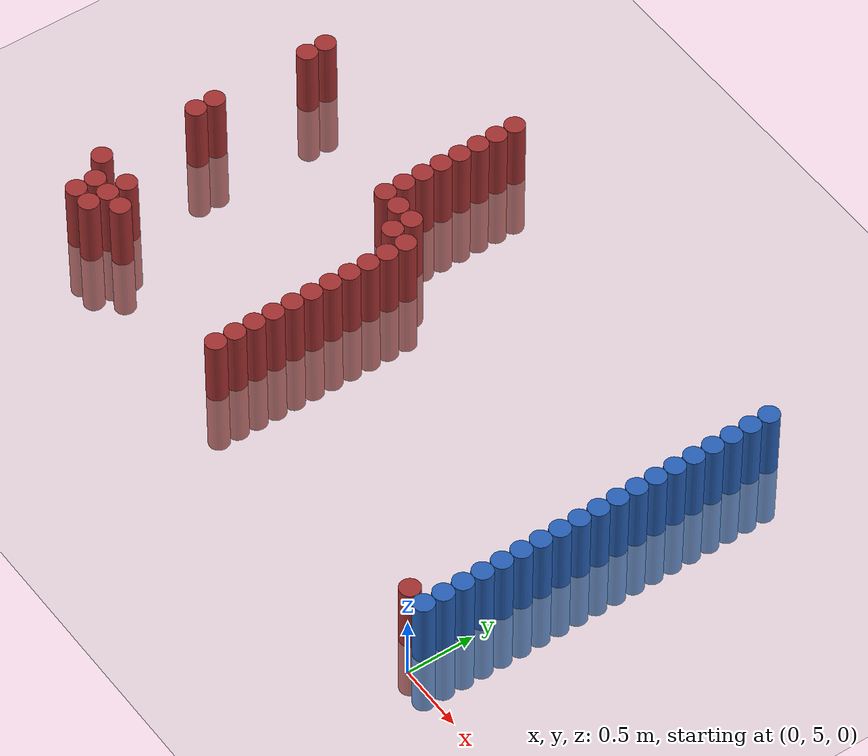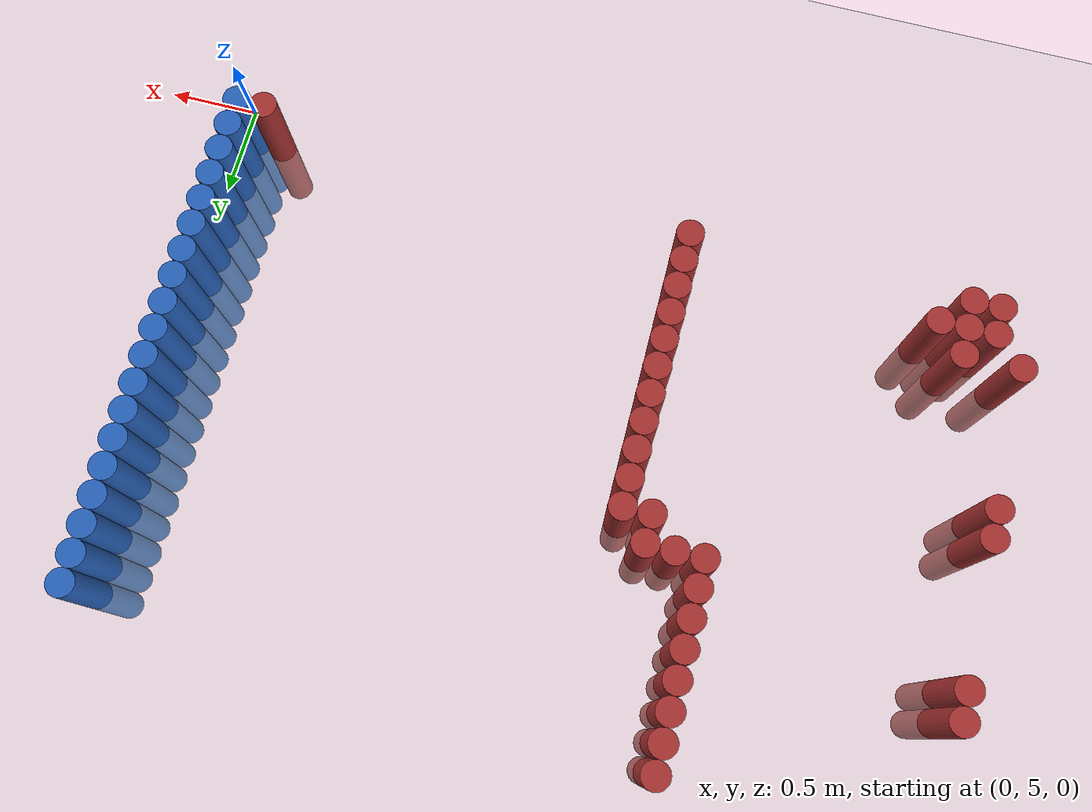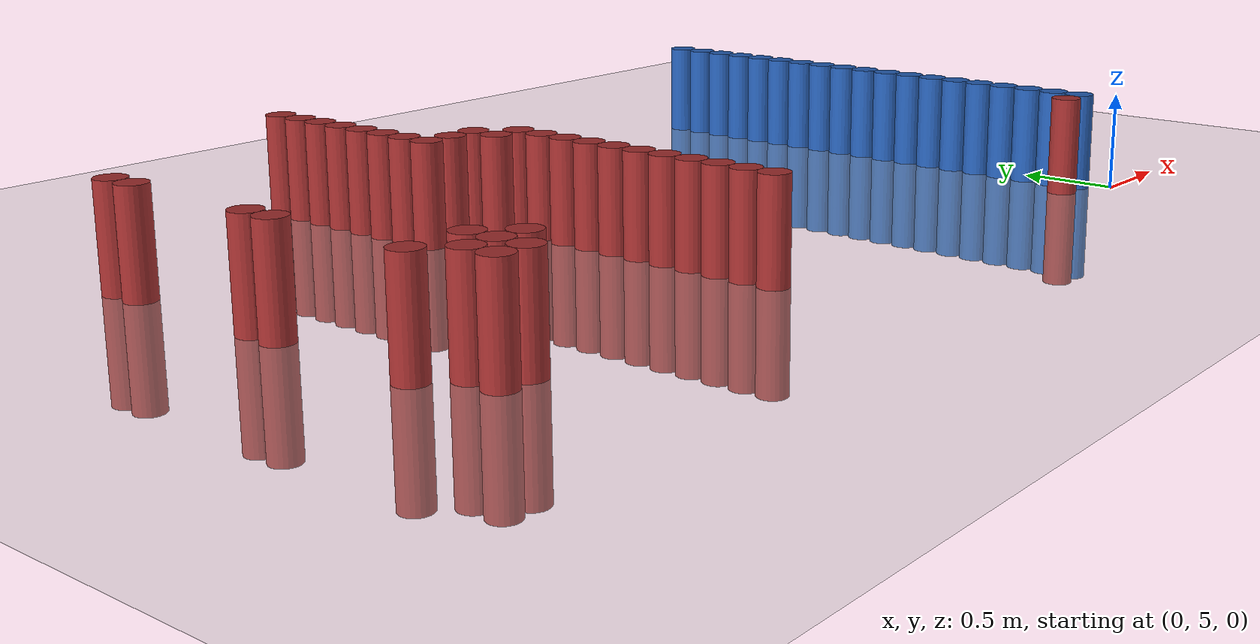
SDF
<sdf version="1.6">
 <world name="default">
  <model name="ground_plane">
   <static>1</static>
   <link name="link">
    <collision name="collision">
     <geometry><plane><normal>0 0 1</normal><size>100 100</size></plane></geometry>
     <surface><friction><ode><mu>100</mu><mu2>50</mu2></ode></friction></surface>
    </collision>
    <visual name="visual">
     <cast_shadows>0</cast_shadows>
     <geometry><plane><normal>0 0 1</normal><size>100 100</size></plane></geometry>
     <material>
      <script><uri>file://media/materials/scripts/gazebo.material</uri><name>Gazebo/Grey</name></script>
     </material>
    </visual>
   </link>
  </model>
  <model name="unit_cylinder_250">
   <static>1</static>
   <pose>-4.425000 5.625000 0.000000 0.000000 0.000000 0.000000</pose>
   <link name="link">
    <inertial>
     <mass>1</mass>
     <inertia><ixx>0.145833</ixx><ixy>0</ixy><ixz>0</ixz><iyy>0.145833</iyy><iyz>0</iyz><izz>0.125</izz></inertia>
    </inertial>
    <collision name="collision">
     <geometry><cylinder><radius>0.075000</radius><length>1</length></cylinder></geometry>
    </collision>
    <visual name="visual">
     <geometry><cylinder><radius>0.075000</radius><length>1</length></cylinder></geometry>
     <material>
      <ambient>0.648000 0.192000 0.192000 1</ambient>
      <diffuse>0.648000 0.192000 0.192000 1</diffuse>
     </material>
     <material>
      <script><name>Gazebo/Grey</name><uri>file://media/materials/scripts/gazebo.material</uri></script>
     </material>
    </visual>
   </link>
  </model>
  <model name="unit_cylinder_251">
   <static>1</static>
   <pose>-4.425000 6.375000 0.000000 0.000000 0.000000 0.000000</pose>
   <link name="link">
    <inertial>
     <mass>1</mass>
     <inertia><ixx>0.145833</ixx><ixy>0</ixy><ixz>0</ixz><iyy>0.145833</iyy><iyz>0</iyz><izz>0.125</izz></inertia>
    </inertial>
    <collision name="collision">
     <geometry><cylinder><radius>0.075000</radius><length>1</length></cylinder></geometry>
    </collision>
    <visual name="visual">
     <geometry><cylinder><radius>0.075000</radius><length>1</length></cylinder></geometry>
     <material>
      <ambient>0.648000 0.192000 0.192000 1</ambient>
      <diffuse>0.648000 0.192000 0.192000 1</diffuse>
     </material>
     <material>
      <script><name>Gazebo/Grey</name><uri>file://media/materials/scripts/gazebo.material</uri></script>
     </material>
    </visual>
   </link>
  </model>
  <model name="unit_cylinder_252">
   <static>1</static>
   <pose>-4.425000 6.525000 0.000000 0.000000 0.000000 0.000000</pose>
   <link name="link">
    <inertial>
     <mass>1</mass>
     <inertia><ixx>0.145833</ixx><ixy>0</ixy><ixz>0</ixz><iyy>0.145833</iyy><iyz>0</iyz><izz>0.125</izz></inertia>
    </inertial>
    <collision name="collision">
     <geometry><cylinder><radius>0.075000</radius><length>1</length></cylinder></geometry>
    </collision>
    <visual name="visual">
     <geometry><cylinder><radius>0.075000</radius><length>1</length></cylinder></geometry>
     <material>
      <ambient>0.648000 0.192000 0.192000 1</ambient>
      <diffuse>0.648000 0.192000 0.192000 1</diffuse>
     </material>
     <material>
      <script><name>Gazebo/Grey</name><uri>file://media/materials/scripts/gazebo.material</uri></script>
     </material>
    </visual>
   </link>
  </model>
  <model name="unit_cylinder_253">
   <static>1</static>
   <pose>-4.425000 7.275000 0.000000 0.000000 0.000000 0.000000</pose>
   <link name="link">
    <inertial>
     <mass>1</mass>
     <inertia><ixx>0.145833</ixx><ixy>0</ixy><ixz>0</ixz><iyy>0.145833</iyy><iyz>0</iyz><izz>0.125</izz></inertia>
    </inertial>
    <collision name="collision">
     <geometry><cylinder><radius>0.075000</radius><length>1</length></cylinder></geometry>
    </collision>
    <visual name="visual">
     <geometry><cylinder><radius>0.075000</radius><length>1</length></cylinder></geometry>
     <material>
      <ambient>0.648000 0.192000 0.192000 1</ambient>
      <diffuse>0.648000 0.192000 0.192000 1</diffuse>
     </material>
     <material>
      <script><name>Gazebo/Grey</name><uri>file://media/materials/scripts/gazebo.material</uri></script>
     </material>
    </visual>
   </link>
  </model>
  <model name="unit_cylinder_254">
   <static>1</static>
   <pose>-4.425000 7.425000 0.000000 0.000000 0.000000 0.000000</pose>
   <link name="link">
    <inertial>
     <mass>1</mass>
     <inertia><ixx>0.145833</ixx><ixy>0</ixy><ixz>0</ixz><iyy>0.145833</iyy><iyz>0</iyz><izz>0.125</izz></inertia>
    </inertial>
    <collision name="collision">
     <geometry><cylinder><radius>0.075000</radius><length>1</length></cylinder></geometry>
    </collision>
    <visual name="visual">
     <geometry><cylinder><radius>0.075000</radius><length>1</length></cylinder></geometry>
     <material>
      <ambient>0.648000 0.192000 0.192000 1</ambient>
      <diffuse>0.648000 0.192000 0.192000 1</diffuse>
     </material>
     <material>
      <script><name>Gazebo/Grey</name><uri>file://media/materials/scripts/gazebo.material</uri></script>
     </material>
    </visual>
   </link>
  </model>
  <model name="unit_cylinder_255">
   <static>1</static>
   <pose>-4.275000 5.325000 0.000000 0.000000 0.000000 0.000000</pose>
   <link name="link">
    <inertial>
     <mass>1</mass>
     <inertia><ixx>0.145833</ixx><ixy>0</ixy><ixz>0</ixz><iyy>0.145833</iyy><iyz>0</iyz><izz>0.125</izz></inertia>
    </inertial>
    <collision name="collision">
     <geometry><cylinder><radius>0.075000</radius><length>1</length></cylinder></geometry>
    </collision>
    <visual name="visual">
     <geometry><cylinder><radius>0.075000</radius><length>1</length></cylinder></geometry>
     <material>
      <ambient>0.648000 0.192000 0.192000 1</ambient>
      <diffuse>0.648000 0.192000 0.192000 1</diffuse>
     </material>
     <material>
      <script><name>Gazebo/Grey</name><uri>file://media/materials/scripts/gazebo.material</uri></script>
     </material>
    </visual>
   </link>
  </model>
  <model name="unit_cylinder_256">
   <static>1</static>
   <pose>-4.275000 5.475000 0.000000 0.000000 0.000000 0.000000</pose>
   <link name="link">
    <inertial>
     <mass>1</mass>
     <inertia><ixx>0.145833</ixx><ixy>0</ixy><ixz>0</ixz><iyy>0.145833</iyy><iyz>0</iyz><izz>0.125</izz></inertia>
    </inertial>
    <collision name="collision">
     <geometry><cylinder><radius>0.075000</radius><length>1</length></cylinder></geometry>
    </collision>
    <visual name="visual">
     <geometry><cylinder><radius>0.075000</radius><length>1</length></cylinder></geometry>
     <material>
      <ambient>0.648000 0.192000 0.192000 1</ambient>
      <diffuse>0.648000 0.192000 0.192000 1</diffuse>
     </material>
     <material>
      <script><name>Gazebo/Grey</name><uri>file://media/materials/scripts/gazebo.material</uri></script>
     </material>
    </visual>
   </link>
  </model>
  <model name="unit_cylinder_257">
   <static>1</static>
   <pose>-4.125000 5.325000 0.000000 0.000000 0.000000 0.000000</pose>
   <link name="link">
    <inertial>
     <mass>1</mass>
     <inertia><ixx>0.145833</ixx><ixy>0</ixy><ixz>0</ixz><iyy>0.145833</iyy><iyz>0</iyz><izz>0.125</izz></inertia>
    </inertial>
    <collision name="collision">
     <geometry><cylinder><radius>0.075000</radius><length>1</length></cylinder></geometry>
    </collision>
    <visual name="visual">
     <geometry><cylinder><radius>0.075000</radius><length>1</length></cylinder></geometry>
     <material>
      <ambient>0.648000 0.192000 0.192000 1</ambient>
      <diffuse>0.648000 0.192000 0.192000 1</diffuse>
     </material>
     <material>
      <script><name>Gazebo/Grey</name><uri>file://media/materials/scripts/gazebo.material</uri></script>
     </material>
    </visual>
   </link>
  </model>
  <model name="unit_cylinder_258">
   <static>1</static>
   <pose>-4.125000 5.475000 0.000000 0.000000 0.000000 0.000000</pose>
   <link name="link">
    <inertial>
     <mass>1</mass>
     <inertia><ixx>0.145833</ixx><ixy>0</ixy><ixz>0</ixz><iyy>0.145833</iyy><iyz>0</iyz><izz>0.125</izz></inertia>
    </inertial>
    <collision name="collision">
     <geometry><cylinder><radius>0.075000</radius><length>1</length></cylinder></geometry>
    </collision>
    <visual name="visual">
     <geometry><cylinder><radius>0.075000</radius><length>1</length></cylinder></geometry>
     <material>
      <ambient>0.648000 0.192000 0.192000 1</ambient>
      <diffuse>0.648000 0.192000 0.192000 1</diffuse>
     </material>
     <material>
      <script><name>Gazebo/Grey</name><uri>file://media/materials/scripts/gazebo.material</uri></script>
     </material>
    </visual>
   </link>
  </model>
  <model name="unit_cylinder_259">
   <static>1</static>
   <pose>-4.125000 5.625000 0.000000 0.000000 0.000000 0.000000</pose>
   <link name="link">
    <inertial>
     <mass>1</mass>
     <inertia><ixx>0.145833</ixx><ixy>0</ixy><ixz>0</ixz><iyy>0.145833</iyy><iyz>0</iyz><izz>0.125</izz></inertia>
    </inertial>
    <collision name="collision">
     <geometry><cylinder><radius>0.075000</radius><length>1</length></cylinder></geometry>
    </collision>
    <visual name="visual">
     <geometry><cylinder><radius>0.075000</radius><length>1</length></cylinder></geometry>
     <material>
      <ambient>0.648000 0.192000 0.192000 1</ambient>
      <diffuse>0.648000 0.192000 0.192000 1</diffuse>
     </material>
     <material>
      <script><name>Gazebo/Grey</name><uri>file://media/materials/scripts/gazebo.material</uri></script>
     </material>
    </visual>
   </link>
  </model>
  <model name="unit_cylinder_266">
   <static>1</static>
   <pose>-3.975000 5.475000 0.000000 0.000000 0.000000 0.000000</pose>
   <link name="link">
    <inertial>
     <mass>1</mass>
     <inertia><ixx>0.145833</ixx><ixy>0</ixy><ixz>0</ixz><iyy>0.145833</iyy><iyz>0</iyz><izz>0.125</izz></inertia>
    </inertial>
    <collision name="collision">
     <geometry><cylinder><radius>0.075000</radius><length>1</length></cylinder></geometry>
    </collision>
    <visual name="visual">
     <geometry><cylinder><radius>0.075000</radius><length>1</length></cylinder></geometry>
     <material>
      <ambient>0.648000 0.192000 0.192000 1</ambient>
      <diffuse>0.648000 0.192000 0.192000 1</diffuse>
     </material>
     <material>
      <script><name>Gazebo/Grey</name><uri>file://media/materials/scripts/gazebo.material</uri></script>
     </material>
    </visual>
   </link>
  </model>
  <model name="unit_cylinder_279">
   <static>1</static>
   <pose>-3.075000 6.975000 0.000000 0.000000 0.000000 0.000000</pose>
   <link name="link">
    <inertial>
     <mass>1</mass>
     <inertia><ixx>0.145833</ixx><ixy>0</ixy><ixz>0</ixz><iyy>0.145833</iyy><iyz>0</iyz><izz>0.125</izz></inertia>
    </inertial>
    <collision name="collision">
     <geometry><cylinder><radius>0.075000</radius><length>1</length></cylinder></geometry>
    </collision>
    <visual name="visual">
     <geometry><cylinder><radius>0.075000</radius><length>1</length></cylinder></geometry>
     <material>
      <ambient>0.648000 0.192000 0.192000 1</ambient>
      <diffuse>0.648000 0.192000 0.192000 1</diffuse>
     </material>
     <material>
      <script><name>Gazebo/Grey</name><uri>file://media/materials/scripts/gazebo.material</uri></script>
     </material>
    </visual>
   </link>
  </model>
  <model name="unit_cylinder_280">
   <static>1</static>
   <pose>-3.075000 7.125000 0.000000 0.000000 0.000000 0.000000</pose>
   <link name="link">
    <inertial>
     <mass>1</mass>
     <inertia><ixx>0.145833</ixx><ixy>0</ixy><ixz>0</ixz><iyy>0.145833</iyy><iyz>0</iyz><izz>0.125</izz></inertia>
    </inertial>
    <collision name="collision">
     <geometry><cylinder><radius>0.075000</radius><length>1</length></cylinder></geometry>
    </collision>
    <visual name="visual">
     <geometry><cylinder><radius>0.075000</radius><length>1</length></cylinder></geometry>
     <material>
      <ambient>0.648000 0.192000 0.192000 1</ambient>
      <diffuse>0.648000 0.192000 0.192000 1</diffuse>
     </material>
     <material>
      <script><name>Gazebo/Grey</name><uri>file://media/materials/scripts/gazebo.material</uri></script>
     </material>
    </visual>
   </link>
  </model>
  <model name="unit_cylinder_281">
   <static>1</static>
   <pose>-3.075000 7.275000 0.000000 0.000000 0.000000 0.000000</pose>
   <link name="link">
    <inertial>
     <mass>1</mass>
     <inertia><ixx>0.145833</ixx><ixy>0</ixy><ixz>0</ixz><iyy>0.145833</iyy><iyz>0</iyz><izz>0.125</izz></inertia>
    </inertial>
    <collision name="collision">
     <geometry><cylinder><radius>0.075000</radius><length>1</length></cylinder></geometry>
    </collision>
    <visual name="visual">
     <geometry><cylinder><radius>0.075000</radius><length>1</length></cylinder></geometry>
     <material>
      <ambient>0.648000 0.192000 0.192000 1</ambient>
      <diffuse>0.648000 0.192000 0.192000 1</diffuse>
     </material>
     <material>
      <script><name>Gazebo/Grey</name><uri>file://media/materials/scripts/gazebo.material</uri></script>
     </material>
    </visual>
   </link>
  </model>
  <model name="unit_cylinder_282">
   <static>1</static>
   <pose>-3.075000 7.425000 0.000000 0.000000 0.000000 0.000000</pose>
   <link name="link">
    <inertial>
     <mass>1</mass>
     <inertia><ixx>0.145833</ixx><ixy>0</ixy><ixz>0</ixz><iyy>0.145833</iyy><iyz>0</iyz><izz>0.125</izz></inertia>
    </inertial>
    <collision name="collision">
     <geometry><cylinder><radius>0.075000</radius><length>1</length></cylinder></geometry>
    </collision>
    <visual name="visual">
     <geometry><cylinder><radius>0.075000</radius><length>1</length></cylinder></geometry>
     <material>
      <ambient>0.648000 0.192000 0.192000 1</ambient>
      <diffuse>0.648000 0.192000 0.192000 1</diffuse>
     </material>
     <material>
      <script><name>Gazebo/Grey</name><uri>file://media/materials/scripts/gazebo.material</uri></script>
     </material>
    </visual>
   </link>
  </model>
  <model name="unit_cylinder_283">
   <static>1</static>
   <pose>-3.075000 7.575000 0.000000 0.000000 0.000000 0.000000</pose>
   <link name="link">
    <inertial>
     <mass>1</mass>
     <inertia><ixx>0.145833</ixx><ixy>0</ixy><ixz>0</ixz><iyy>0.145833</iyy><iyz>0</iyz><izz>0.125</izz></inertia>
    </inertial>
    <collision name="collision">
     <geometry><cylinder><radius>0.075000</radius><length>1</length></cylinder></geometry>
    </collision>
    <visual name="visual">
     <geometry><cylinder><radius>0.075000</radius><length>1</length></cylinder></geometry>
     <material>
      <ambient>0.648000 0.192000 0.192000 1</ambient>
      <diffuse>0.648000 0.192000 0.192000 1</diffuse>
     </material>
     <material>
      <script><name>Gazebo/Grey</name><uri>file://media/materials/scripts/gazebo.material</uri></script>
     </material>
    </visual>
   </link>
  </model>
  <model name="unit_cylinder_284">
   <static>1</static>
   <pose>-3.075000 7.725000 0.000000 0.000000 0.000000 0.000000</pose>
   <link name="link">
    <inertial>
     <mass>1</mass>
     <inertia><ixx>0.145833</ixx><ixy>0</ixy><ixz>0</ixz><iyy>0.145833</iyy><iyz>0</iyz><izz>0.125</izz></inertia>
    </inertial>
    <collision name="collision">
     <geometry><cylinder><radius>0.075000</radius><length>1</length></cylinder></geometry>
    </collision>
    <visual name="visual">
     <geometry><cylinder><radius>0.075000</radius><length>1</length></cylinder></geometry>
     <material>
      <ambient>0.648000 0.192000 0.192000 1</ambient>
      <diffuse>0.648000 0.192000 0.192000 1</diffuse>
     </material>
     <material>
      <script><name>Gazebo/Grey</name><uri>file://media/materials/scripts/gazebo.material</uri></script>
     </material>
    </visual>
   </link>
  </model>
  <model name="unit_cylinder_285">
   <static>1</static>
   <pose>-3.075000 7.875000 0.000000 0.000000 0.000000 0.000000</pose>
   <link name="link">
    <inertial>
     <mass>1</mass>
     <inertia><ixx>0.145833</ixx><ixy>0</ixy><ixz>0</ixz><iyy>0.145833</iyy><iyz>0</iyz><izz>0.125</izz></inertia>
    </inertial>
    <collision name="collision">
     <geometry><cylinder><radius>0.075000</radius><length>1</length></cylinder></geometry>
    </collision>
    <visual name="visual">
     <geometry><cylinder><radius>0.075000</radius><length>1</length></cylinder></geometry>
     <material>
      <ambient>0.648000 0.192000 0.192000 1</ambient>
      <diffuse>0.648000 0.192000 0.192000 1</diffuse>
     </material>
     <material>
      <script><name>Gazebo/Grey</name><uri>file://media/materials/scripts/gazebo.material</uri></script>
     </material>
    </visual>
   </link>
  </model>
  <model name="unit_cylinder_286">
   <static>1</static>
   <pose>-3.075000 8.025000 0.000000 0.000000 0.000000 0.000000</pose>
   <link name="link">
    <inertial>
     <mass>1</mass>
     <inertia><ixx>0.145833</ixx><ixy>0</ixy><ixz>0</ixz><iyy>0.145833</iyy><iyz>0</iyz><izz>0.125</izz></inertia>
    </inertial>
    <collision name="collision">
     <geometry><cylinder><radius>0.075000</radius><length>1</length></cylinder></geometry>
    </collision>
    <visual name="visual">
     <geometry><cylinder><radius>0.075000</radius><length>1</length></cylinder></geometry>
     <material>
      <ambient>0.648000 0.192000 0.192000 1</ambient>
      <diffuse>0.648000 0.192000 0.192000 1</diffuse>
     </material>
     <material>
      <script><name>Gazebo/Grey</name><uri>file://media/materials/scripts/gazebo.material</uri></script>
     </material>
    </visual>
   </link>
  </model>
  <model name="unit_cylinder_293">
   <static>1</static>
   <pose>-2.925000 6.975000 0.000000 0.000000 0.000000 0.000000</pose>
   <link name="link">
    <inertial>
     <mass>1</mass>
     <inertia><ixx>0.145833</ixx><ixy>0</ixy><ixz>0</ixz><iyy>0.145833</iyy><iyz>0</iyz><izz>0.125</izz></inertia>
    </inertial>
    <collision name="collision">
     <geometry><cylinder><radius>0.075000</radius><length>1</length></cylinder></geometry>
    </collision>
    <visual name="visual">
     <geometry><cylinder><radius>0.075000</radius><length>1</length></cylinder></geometry>
     <material>
      <ambient>0.648000 0.192000 0.192000 1</ambient>
      <diffuse>0.648000 0.192000 0.192000 1</diffuse>
     </material>
     <material>
      <script><name>Gazebo/Grey</name><uri>file://media/materials/scripts/gazebo.material</uri></script>
     </material>
    </visual>
   </link>
  </model>
  <model name="unit_cylinder_295">
   <static>1</static>
   <pose>-2.775000 6.825000 0.000000 0.000000 0.000000 0.000000</pose>
   <link name="link">
    <inertial>
     <mass>1</mass>
     <inertia><ixx>0.145833</ixx><ixy>0</ixy><ixz>0</ixz><iyy>0.145833</iyy><iyz>0</iyz><izz>0.125</izz></inertia>
    </inertial>
    <collision name="collision">
     <geometry><cylinder><radius>0.075000</radius><length>1</length></cylinder></geometry>
    </collision>
    <visual name="visual">
     <geometry><cylinder><radius>0.075000</radius><length>1</length></cylinder></geometry>
     <material>
      <ambient>0.648000 0.192000 0.192000 1</ambient>
      <diffuse>0.648000 0.192000 0.192000 1</diffuse>
     </material>
     <material>
      <script><name>Gazebo/Grey</name><uri>file://media/materials/scripts/gazebo.material</uri></script>
     </material>
    </visual>
   </link>
  </model>
  <model name="unit_cylinder_296">
   <static>1</static>
   <pose>-2.775000 6.975000 0.000000 0.000000 0.000000 0.000000</pose>
   <link name="link">
    <inertial>
     <mass>1</mass>
     <inertia><ixx>0.145833</ixx><ixy>0</ixy><ixz>0</ixz><iyy>0.145833</iyy><iyz>0</iyz><izz>0.125</izz></inertia>
    </inertial>
    <collision name="collision">
     <geometry><cylinder><radius>0.075000</radius><length>1</length></cylinder></geometry>
    </collision>
    <visual name="visual">
     <geometry><cylinder><radius>0.075000</radius><length>1</length></cylinder></geometry>
     <material>
      <ambient>0.648000 0.192000 0.192000 1</ambient>
      <diffuse>0.648000 0.192000 0.192000 1</diffuse>
     </material>
     <material>
      <script><name>Gazebo/Grey</name><uri>file://media/materials/scripts/gazebo.material</uri></script>
     </material>
    </visual>
   </link>
  </model>
  <model name="unit_cylinder_299">
   <static>1</static>
   <pose>-2.625000 5.325000 0.000000 0.000000 0.000000 0.000000</pose>
   <link name="link">
    <inertial>
     <mass>1</mass>
     <inertia><ixx>0.145833</ixx><ixy>0</ixy><ixz>0</ixz><iyy>0.145833</iyy><iyz>0</iyz><izz>0.125</izz></inertia>
    </inertial>
    <collision name="collision">
     <geometry><cylinder><radius>0.075000</radius><length>1</length></cylinder></geometry>
    </collision>
    <visual name="visual">
     <geometry><cylinder><radius>0.075000</radius><length>1</length></cylinder></geometry>
     <material>
      <ambient>0.648000 0.192000 0.192000 1</ambient>
      <diffuse>0.648000 0.192000 0.192000 1</diffuse>
     </material>
     <material>
      <script><name>Gazebo/Grey</name><uri>file://media/materials/scripts/gazebo.material</uri></script>
     </material>
    </visual>
   </link>
  </model>
  <model name="unit_cylinder_300">
   <static>1</static>
   <pose>-2.625000 5.475000 0.000000 0.000000 0.000000 0.000000</pose>
   <link name="link">
    <inertial>
     <mass>1</mass>
     <inertia><ixx>0.145833</ixx><ixy>0</ixy><ixz>0</ixz><iyy>0.145833</iyy><iyz>0</iyz><izz>0.125</izz></inertia>
    </inertial>
    <collision name="collision">
     <geometry><cylinder><radius>0.075000</radius><length>1</length></cylinder></geometry>
    </collision>
    <visual name="visual">
     <geometry><cylinder><radius>0.075000</radius><length>1</length></cylinder></geometry>
     <material>
      <ambient>0.648000 0.192000 0.192000 1</ambient>
      <diffuse>0.648000 0.192000 0.192000 1</diffuse>
     </material>
     <material>
      <script><name>Gazebo/Grey</name><uri>file://media/materials/scripts/gazebo.material</uri></script>
     </material>
    </visual>
   </link>
  </model>
  <model name="unit_cylinder_301">
   <static>1</static>
   <pose>-2.625000 5.625000 0.000000 0.000000 0.000000 0.000000</pose>
   <link name="link">
    <inertial>
     <mass>1</mass>
     <inertia><ixx>0.145833</ixx><ixy>0</ixy><ixz>0</ixz><iyy>0.145833</iyy><iyz>0</iyz><izz>0.125</izz></inertia>
    </inertial>
    <collision name="collision">
     <geometry><cylinder><radius>0.075000</radius><length>1</length></cylinder></geometry>
    </collision>
    <visual name="visual">
     <geometry><cylinder><radius>0.075000</radius><length>1</length></cylinder></geometry>
     <material>
      <ambient>0.648000 0.192000 0.192000 1</ambient>
      <diffuse>0.648000 0.192000 0.192000 1</diffuse>
     </material>
     <material>
      <script><name>Gazebo/Grey</name><uri>file://media/materials/scripts/gazebo.material</uri></script>
     </material>
    </visual>
   </link>
  </model>
  <model name="unit_cylinder_302">
   <static>1</static>
   <pose>-2.625000 5.775000 0.000000 0.000000 0.000000 0.000000</pose>
   <link name="link">
    <inertial>
     <mass>1</mass>
     <inertia><ixx>0.145833</ixx><ixy>0</ixy><ixz>0</ixz><iyy>0.145833</iyy><iyz>0</iyz><izz>0.125</izz></inertia>
    </inertial>
    <collision name="collision">
     <geometry><cylinder><radius>0.075000</radius><length>1</length></cylinder></geometry>
    </collision>
    <visual name="visual">
     <geometry><cylinder><radius>0.075000</radius><length>1</length></cylinder></geometry>
     <material>
      <ambient>0.648000 0.192000 0.192000 1</ambient>
      <diffuse>0.648000 0.192000 0.192000 1</diffuse>
     </material>
     <material>
      <script><name>Gazebo/Grey</name><uri>file://media/materials/scripts/gazebo.material</uri></script>
     </material>
    </visual>
   </link>
  </model>
  <model name="unit_cylinder_303">
   <static>1</static>
   <pose>-2.625000 5.925000 0.000000 0.000000 0.000000 0.000000</pose>
   <link name="link">
    <inertial>
     <mass>1</mass>
     <inertia><ixx>0.145833</ixx><ixy>0</ixy><ixz>0</ixz><iyy>0.145833</iyy><iyz>0</iyz><izz>0.125</izz></inertia>
    </inertial>
    <collision name="collision">
     <geometry><cylinder><radius>0.075000</radius><length>1</length></cylinder></geometry>
    </collision>
    <visual name="visual">
     <geometry><cylinder><radius>0.075000</radius><length>1</length></cylinder></geometry>
     <material>
      <ambient>0.648000 0.192000 0.192000 1</ambient>
      <diffuse>0.648000 0.192000 0.192000 1</diffuse>
     </material>
     <material>
      <script><name>Gazebo/Grey</name><uri>file://media/materials/scripts/gazebo.material</uri></script>
     </material>
    </visual>
   </link>
  </model>
  <model name="unit_cylinder_304">
   <static>1</static>
   <pose>-2.625000 6.075000 0.000000 0.000000 0.000000 0.000000</pose>
   <link name="link">
    <inertial>
     <mass>1</mass>
     <inertia><ixx>0.145833</ixx><ixy>0</ixy><ixz>0</ixz><iyy>0.145833</iyy><iyz>0</iyz><izz>0.125</izz></inertia>
    </inertial>
    <collision name="collision">
     <geometry><cylinder><radius>0.075000</radius><length>1</length></cylinder></geometry>
    </collision>
    <visual name="visual">
     <geometry><cylinder><radius>0.075000</radius><length>1</length></cylinder></geometry>
     <material>
      <ambient>0.648000 0.192000 0.192000 1</ambient>
      <diffuse>0.648000 0.192000 0.192000 1</diffuse>
     </material>
     <material>
      <script><name>Gazebo/Grey</name><uri>file://media/materials/scripts/gazebo.material</uri></script>
     </material>
    </visual>
   </link>
  </model>
  <model name="unit_cylinder_305">
   <static>1</static>
   <pose>-2.625000 6.225000 0.000000 0.000000 0.000000 0.000000</pose>
   <link name="link">
    <inertial>
     <mass>1</mass>
     <inertia><ixx>0.145833</ixx><ixy>0</ixy><ixz>0</ixz><iyy>0.145833</iyy><iyz>0</iyz><izz>0.125</izz></inertia>
    </inertial>
    <collision name="collision">
     <geometry><cylinder><radius>0.075000</radius><length>1</length></cylinder></geometry>
    </collision>
    <visual name="visual">
     <geometry><cylinder><radius>0.075000</radius><length>1</length></cylinder></geometry>
     <material>
      <ambient>0.648000 0.192000 0.192000 1</ambient>
      <diffuse>0.648000 0.192000 0.192000 1</diffuse>
     </material>
     <material>
      <script><name>Gazebo/Grey</name><uri>file://media/materials/scripts/gazebo.material</uri></script>
     </material>
    </visual>
   </link>
  </model>
  <model name="unit_cylinder_306">
   <static>1</static>
   <pose>-2.625000 6.375000 0.000000 0.000000 0.000000 0.000000</pose>
   <link name="link">
    <inertial>
     <mass>1</mass>
     <inertia><ixx>0.145833</ixx><ixy>0</ixy><ixz>0</ixz><iyy>0.145833</iyy><iyz>0</iyz><izz>0.125</izz></inertia>
    </inertial>
    <collision name="collision">
     <geometry><cylinder><radius>0.075000</radius><length>1</length></cylinder></geometry>
    </collision>
    <visual name="visual">
     <geometry><cylinder><radius>0.075000</radius><length>1</length></cylinder></geometry>
     <material>
      <ambient>0.648000 0.192000 0.192000 1</ambient>
      <diffuse>0.648000 0.192000 0.192000 1</diffuse>
     </material>
     <material>
      <script><name>Gazebo/Grey</name><uri>file://media/materials/scripts/gazebo.material</uri></script>
     </material>
    </visual>
   </link>
  </model>
  <model name="unit_cylinder_307">
   <static>1</static>
   <pose>-2.625000 6.525000 0.000000 0.000000 0.000000 0.000000</pose>
   <link name="link">
    <inertial>
     <mass>1</mass>
     <inertia><ixx>0.145833</ixx><ixy>0</ixy><ixz>0</ixz><iyy>0.145833</iyy><iyz>0</iyz><izz>0.125</izz></inertia>
    </inertial>
    <collision name="collision">
     <geometry><cylinder><radius>0.075000</radius><length>1</length></cylinder></geometry>
    </collision>
    <visual name="visual">
     <geometry><cylinder><radius>0.075000</radius><length>1</length></cylinder></geometry>
     <material>
      <ambient>0.648000 0.192000 0.192000 1</ambient>
      <diffuse>0.648000 0.192000 0.192000 1</diffuse>
     </material>
     <material>
      <script><name>Gazebo/Grey</name><uri>file://media/materials/scripts/gazebo.material</uri></script>
     </material>
    </visual>
   </link>
  </model>
  <model name="unit_cylinder_308">
   <static>1</static>
   <pose>-2.625000 6.675000 0.000000 0.000000 0.000000 0.000000</pose>
   <link name="link">
    <inertial>
     <mass>1</mass>
     <inertia><ixx>0.145833</ixx><ixy>0</ixy><ixz>0</ixz><iyy>0.145833</iyy><iyz>0</iyz><izz>0.125</izz></inertia>
    </inertial>
    <collision name="collision">
     <geometry><cylinder><radius>0.075000</radius><length>1</length></cylinder></geometry>
    </collision>
    <visual name="visual">
     <geometry><cylinder><radius>0.075000</radius><length>1</length></cylinder></geometry>
     <material>
      <ambient>0.648000 0.192000 0.192000 1</ambient>
      <diffuse>0.648000 0.192000 0.192000 1</diffuse>
     </material>
     <material>
      <script><name>Gazebo/Grey</name><uri>file://media/materials/scripts/gazebo.material</uri></script>
     </material>
    </visual>
   </link>
  </model>
  <model name="unit_cylinder_309">
   <static>1</static>
   <pose>-2.625000 6.825000 0.000000 0.000000 0.000000 0.000000</pose>
   <link name="link">
    <inertial>
     <mass>1</mass>
     <inertia><ixx>0.145833</ixx><ixy>0</ixy><ixz>0</ixz><iyy>0.145833</iyy><iyz>0</iyz><izz>0.125</izz></inertia>
    </inertial>
    <collision name="collision">
     <geometry><cylinder><radius>0.075000</radius><length>1</length></cylinder></geometry>
    </collision>
    <visual name="visual">
     <geometry><cylinder><radius>0.075000</radius><length>1</length></cylinder></geometry>
     <material>
      <ambient>0.648000 0.192000 0.192000 1</ambient>
      <diffuse>0.648000 0.192000 0.192000 1</diffuse>
     </material>
     <material>
      <script><name>Gazebo/Grey</name><uri>file://media/materials/scripts/gazebo.material</uri></script>
     </material>
    </visual>
   </link>
  </model>
  <model name="unit_cylinder_341">
   <static>1</static>
   <pose>-0.225000 5.175000 0.000000 0.000000 0.000000 0.000000</pose>
   <link name="link">
    <inertial>
     <mass>1</mass>
     <inertia><ixx>0.145833</ixx><ixy>0</ixy><ixz>0</ixz><iyy>0.145833</iyy><iyz>0</iyz><izz>0.125</izz></inertia>
    </inertial>
    <collision name="collision">
     <geometry><cylinder><radius>0.075000</radius><length>1</length></cylinder></geometry>
    </collision>
    <visual name="visual">
     <geometry><cylinder><radius>0.075000</radius><length>1</length></cylinder></geometry>
     <material>
      <ambient>0.648000 0.192000 0.192000 1</ambient>
      <diffuse>0.648000 0.192000 0.192000 1</diffuse>
     </material>
     <material>
      <script><name>Gazebo/Grey</name><uri>file://media/materials/scripts/gazebo.material</uri></script>
     </material>
    </visual>
   </link>
  </model>
  <model name="unit_cylinder_343">
   <static>1</static>
   <pose>-0.075000 5.175000 0.000000 0.000000 0.000000 0.000000</pose>
   <link name="link">
    <inertial>
     <mass>1</mass>
     <inertia><ixx>0.145833</ixx><ixy>0</ixy><ixz>0</ixz><iyy>0.145833</iyy><iyz>0</iyz><izz>0.125</izz></inertia>
    </inertial>
    <collision name="collision">
     <geometry><cylinder><radius>0.075000</radius><length>1</length></cylinder></geometry>
    </collision>
    <visual name="visual">
     <geometry><cylinder><radius>0.075000</radius><length>1</length></cylinder></geometry>
     <material>
      <ambient>0.152000 0.379000 0.720000 1</ambient>
      <diffuse>0.152000 0.379000 0.720000 1</diffuse>
     </material>
     <material>
      <script><name>Gazebo/Grey</name><uri>file://media/materials/scripts/gazebo.material</uri></script>
     </material>
    </visual>
   </link>
  </model>
  <model name="unit_cylinder_344">
   <static>1</static>
   <pose>-0.075000 5.325000 0.000000 0.000000 0.000000 0.000000</pose>
   <link name="link">
    <inertial>
     <mass>1</mass>
     <inertia><ixx>0.145833</ixx><ixy>0</ixy><ixz>0</ixz><iyy>0.145833</iyy><iyz>0</iyz><izz>0.125</izz></inertia>
    </inertial>
    <collision name="collision">
     <geometry><cylinder><radius>0.075000</radius><length>1</length></cylinder></geometry>
    </collision>
    <visual name="visual">
     <geometry><cylinder><radius>0.075000</radius><length>1</length></cylinder></geometry>
     <material>
      <ambient>0.152000 0.379000 0.720000 1</ambient>
      <diffuse>0.152000 0.379000 0.720000 1</diffuse>
     </material>
     <material>
      <script><name>Gazebo/Grey</name><uri>file://media/materials/scripts/gazebo.material</uri></script>
     </material>
    </visual>
   </link>
  </model>
  <model name="unit_cylinder_345">
   <static>1</static>
   <pose>-0.075000 5.475000 0.000000 0.000000 0.000000 0.000000</pose>
   <link name="link">
    <inertial>
     <mass>1</mass>
     <inertia><ixx>0.145833</ixx><ixy>0</ixy><ixz>0</ixz><iyy>0.145833</iyy><iyz>0</iyz><izz>0.125</izz></inertia>
    </inertial>
    <collision name="collision">
     <geometry><cylinder><radius>0.075000</radius><length>1</length></cylinder></geometry>
    </collision>
    <visual name="visual">
     <geometry><cylinder><radius>0.075000</radius><length>1</length></cylinder></geometry>
     <material>
      <ambient>0.152000 0.379000 0.720000 1</ambient>
      <diffuse>0.152000 0.379000 0.720000 1</diffuse>
     </material>
     <material>
      <script><name>Gazebo/Grey</name><uri>file://media/materials/scripts/gazebo.material</uri></script>
     </material>
    </visual>
   </link>
  </model>
  <model name="unit_cylinder_346">
   <static>1</static>
   <pose>-0.075000 5.625000 0.000000 0.000000 0.000000 0.000000</pose>
   <link name="link">
    <inertial>
     <mass>1</mass>
     <inertia><ixx>0.145833</ixx><ixy>0</ixy><ixz>0</ixz><iyy>0.145833</iyy><iyz>0</iyz><izz>0.125</izz></inertia>
    </inertial>
    <collision name="collision">
     <geometry><cylinder><radius>0.075000</radius><length>1</length></cylinder></geometry>
    </collision>
    <visual name="visual">
     <geometry><cylinder><radius>0.075000</radius><length>1</length></cylinder></geometry>
     <material>
      <ambient>0.152000 0.379000 0.720000 1</ambient>
      <diffuse>0.152000 0.379000 0.720000 1</diffuse>
     </material>
     <material>
      <script><name>Gazebo/Grey</name><uri>file://media/materials/scripts/gazebo.material</uri></script>
     </material>
    </visual>
   </link>
  </model>
  <model name="unit_cylinder_347">
   <static>1</static>
   <pose>-0.075000 5.775000 0.000000 0.000000 0.000000 0.000000</pose>
   <link name="link">
    <inertial>
     <mass>1</mass>
     <inertia><ixx>0.145833</ixx><ixy>0</ixy><ixz>0</ixz><iyy>0.145833</iyy><iyz>0</iyz><izz>0.125</izz></inertia>
    </inertial>
    <collision name="collision">
     <geometry><cylinder><radius>0.075000</radius><length>1</length></cylinder></geometry>
    </collision>
    <visual name="visual">
     <geometry><cylinder><radius>0.075000</radius><length>1</length></cylinder></geometry>
     <material>
      <ambient>0.152000 0.379000 0.720000 1</ambient>
      <diffuse>0.152000 0.379000 0.720000 1</diffuse>
     </material>
     <material>
      <script><name>Gazebo/Grey</name><uri>file://media/materials/scripts/gazebo.material</uri></script>
     </material>
    </visual>
   </link>
  </model>
  <model name="unit_cylinder_348">
   <static>1</static>
   <pose>-0.075000 5.925000 0.000000 0.000000 0.000000 0.000000</pose>
   <link name="link">
    <inertial>
     <mass>1</mass>
     <inertia><ixx>0.145833</ixx><ixy>0</ixy><ixz>0</ixz><iyy>0.145833</iyy><iyz>0</iyz><izz>0.125</izz></inertia>
    </inertial>
    <collision name="collision">
     <geometry><cylinder><radius>0.075000</radius><length>1</length></cylinder></geometry>
    </collision>
    <visual name="visual">
     <geometry><cylinder><radius>0.075000</radius><length>1</length></cylinder></geometry>
     <material>
      <ambient>0.152000 0.379000 0.720000 1</ambient>
      <diffuse>0.152000 0.379000 0.720000 1</diffuse>
     </material>
     <material>
      <script><name>Gazebo/Grey</name><uri>file://media/materials/scripts/gazebo.material</uri></script>
     </material>
    </visual>
   </link>
  </model>
  <model name="unit_cylinder_349">
   <static>1</static>
   <pose>-0.075000 6.075000 0.000000 0.000000 0.000000 0.000000</pose>
   <link name="link">
    <inertial>
     <mass>1</mass>
     <inertia><ixx>0.145833</ixx><ixy>0</ixy><ixz>0</ixz><iyy>0.145833</iyy><iyz>0</iyz><izz>0.125</izz></inertia>
    </inertial>
    <collision name="collision">
     <geometry><cylinder><radius>0.075000</radius><length>1</length></cylinder></geometry>
    </collision>
    <visual name="visual">
     <geometry><cylinder><radius>0.075000</radius><length>1</length></cylinder></geometry>
     <material>
      <ambient>0.152000 0.379000 0.720000 1</ambient>
      <diffuse>0.152000 0.379000 0.720000 1</diffuse>
     </material>
     <material>
      <script><name>Gazebo/Grey</name><uri>file://media/materials/scripts/gazebo.material</uri></script>
     </material>
    </visual>
   </link>
  </model>
  <model name="unit_cylinder_350">
   <static>1</static>
   <pose>-0.075000 6.225000 0.000000 0.000000 0.000000 0.000000</pose>
   <link name="link">
    <inertial>
     <mass>1</mass>
     <inertia><ixx>0.145833</ixx><ixy>0</ixy><ixz>0</ixz><iyy>0.145833</iyy><iyz>0</iyz><izz>0.125</izz></inertia>
    </inertial>
    <collision name="collision">
     <geometry><cylinder><radius>0.075000</radius><length>1</length></cylinder></geometry>
    </collision>
    <visual name="visual">
     <geometry><cylinder><radius>0.075000</radius><length>1</length></cylinder></geometry>
     <material>
      <ambient>0.152000 0.379000 0.720000 1</ambient>
      <diffuse>0.152000 0.379000 0.720000 1</diffuse>
     </material>
     <material>
      <script><name>Gazebo/Grey</name><uri>file://media/materials/scripts/gazebo.material</uri></script>
     </material>
    </visual>
   </link>
  </model>
  <model name="unit_cylinder_351">
   <static>1</static>
   <pose>-0.075000 6.375000 0.000000 0.000000 0.000000 0.000000</pose>
   <link name="link">
    <inertial>
     <mass>1</mass>
     <inertia><ixx>0.145833</ixx><ixy>0</ixy><ixz>0</ixz><iyy>0.145833</iyy><iyz>0</iyz><izz>0.125</izz></inertia>
    </inertial>
    <collision name="collision">
     <geometry><cylinder><radius>0.075000</radius><length>1</length></cylinder></geometry>
    </collision>
    <visual name="visual">
     <geometry><cylinder><radius>0.075000</radius><length>1</length></cylinder></geometry>
     <material>
      <ambient>0.152000 0.379000 0.720000 1</ambient>
      <diffuse>0.152000 0.379000 0.720000 1</diffuse>
     </material>
     <material>
      <script><name>Gazebo/Grey</name><uri>file://media/materials/scripts/gazebo.material</uri></script>
     </material>
    </visual>
   </link>
  </model>
  <model name="unit_cylinder_352">
   <static>1</static>
   <pose>-0.075000 6.525000 0.000000 0.000000 0.000000 0.000000</pose>
   <link name="link">
    <inertial>
     <mass>1</mass>
     <inertia><ixx>0.145833</ixx><ixy>0</ixy><ixz>0</ixz><iyy>0.145833</iyy><iyz>0</iyz><izz>0.125</izz></inertia>
    </inertial>
    <collision name="collision">
     <geometry><cylinder><radius>0.075000</radius><length>1</length></cylinder></geometry>
    </collision>
    <visual name="visual">
     <geometry><cylinder><radius>0.075000</radius><length>1</length></cylinder></geometry>
     <material>
      <ambient>0.152000 0.379000 0.720000 1</ambient>
      <diffuse>0.152000 0.379000 0.720000 1</diffuse>
     </material>
     <material>
      <script><name>Gazebo/Grey</name><uri>file://media/materials/scripts/gazebo.material</uri></script>
     </material>
    </visual>
   </link>
  </model>
  <model name="unit_cylinder_353">
   <static>1</static>
   <pose>-0.075000 6.675000 0.000000 0.000000 0.000000 0.000000</pose>
   <link name="link">
    <inertial>
     <mass>1</mass>
     <inertia><ixx>0.145833</ixx><ixy>0</ixy><ixz>0</ixz><iyy>0.145833</iyy><iyz>0</iyz><izz>0.125</izz></inertia>
    </inertial>
    <collision name="collision">
     <geometry><cylinder><radius>0.075000</radius><length>1</length></cylinder></geometry>
    </collision>
    <visual name="visual">
     <geometry><cylinder><radius>0.075000</radius><length>1</length></cylinder></geometry>
     <material>
      <ambient>0.152000 0.379000 0.720000 1</ambient>
      <diffuse>0.152000 0.379000 0.720000 1</diffuse>
     </material>
     <material>
      <script><name>Gazebo/Grey</name><uri>file://media/materials/scripts/gazebo.material</uri></script>
     </material>
    </visual>
   </link>
  </model>
  <model name="unit_cylinder_354">
   <static>1</static>
   <pose>-0.075000 6.825000 0.000000 0.000000 0.000000 0.000000</pose>
   <link name="link">
    <inertial>
     <mass>1</mass>
     <inertia><ixx>0.145833</ixx><ixy>0</ixy><ixz>0</ixz><iyy>0.145833</iyy><iyz>0</iyz><izz>0.125</izz></inertia>
    </inertial>
    <collision name="collision">
     <geometry><cylinder><radius>0.075000</radius><length>1</length></cylinder></geometry>
    </collision>
    <visual name="visual">
     <geometry><cylinder><radius>0.075000</radius><length>1</length></cylinder></geometry>
     <material>
      <ambient>0.152000 0.379000 0.720000 1</ambient>
      <diffuse>0.152000 0.379000 0.720000 1</diffuse>
     </material>
     <material>
      <script><name>Gazebo/Grey</name><uri>file://media/materials/scripts/gazebo.material</uri></script>
     </material>
    </visual>
   </link>
  </model>
  <model name="unit_cylinder_355">
   <static>1</static>
   <pose>-0.075000 6.975000 0.000000 0.000000 0.000000 0.000000</pose>
   <link name="link">
    <inertial>
     <mass>1</mass>
     <inertia><ixx>0.145833</ixx><ixy>0</ixy><ixz>0</ixz><iyy>0.145833</iyy><iyz>0</iyz><izz>0.125</izz></inertia>
    </inertial>
    <collision name="collision">
     <geometry><cylinder><radius>0.075000</radius><length>1</length></cylinder></geometry>
    </collision>
    <visual name="visual">
     <geometry><cylinder><radius>0.075000</radius><length>1</length></cylinder></geometry>
     <material>
      <ambient>0.152000 0.379000 0.720000 1</ambient>
      <diffuse>0.152000 0.379000 0.720000 1</diffuse>
     </material>
     <material>
      <script><name>Gazebo/Grey</name><uri>file://media/materials/scripts/gazebo.material</uri></script>
     </material>
    </visual>
   </link>
  </model>
  <model name="unit_cylinder_356">
   <static>1</static>
   <pose>-0.075000 7.125000 0.000000 0.000000 0.000000 0.000000</pose>
   <link name="link">
    <inertial>
     <mass>1</mass>
     <inertia><ixx>0.145833</ixx><ixy>0</ixy><ixz>0</ixz><iyy>0.145833</iyy><iyz>0</iyz><izz>0.125</izz></inertia>
    </inertial>
    <collision name="collision">
     <geometry><cylinder><radius>0.075000</radius><length>1</length></cylinder></geometry>
    </collision>
    <visual name="visual">
     <geometry><cylinder><radius>0.075000</radius><length>1</length></cylinder></geometry>
     <material>
      <ambient>0.152000 0.379000 0.720000 1</ambient>
      <diffuse>0.152000 0.379000 0.720000 1</diffuse>
     </material>
     <material>
      <script><name>Gazebo/Grey</name><uri>file://media/materials/scripts/gazebo.material</uri></script>
     </material>
    </visual>
   </link>
  </model>
  <model name="unit_cylinder_357">
   <static>1</static>
   <pose>-0.075000 7.275000 0.000000 0.000000 0.000000 0.000000</pose>
   <link name="link">
    <inertial>
     <mass>1</mass>
     <inertia><ixx>0.145833</ixx><ixy>0</ixy><ixz>0</ixz><iyy>0.145833</iyy><iyz>0</iyz><izz>0.125</izz></inertia>
    </inertial>
    <collision name="collision">
     <geometry><cylinder><radius>0.075000</radius><length>1</length></cylinder></geometry>
    </collision>
    <visual name="visual">
     <geometry><cylinder><radius>0.075000</radius><length>1</length></cylinder></geometry>
     <material>
      <ambient>0.152000 0.379000 0.720000 1</ambient>
      <diffuse>0.152000 0.379000 0.720000 1</diffuse>
     </material>
     <material>
      <script><name>Gazebo/Grey</name><uri>file://media/materials/scripts/gazebo.material</uri></script>
     </material>
    </visual>
   </link>
  </model>
  <model name="unit_cylinder_358">
   <static>1</static>
   <pose>-0.075000 7.425000 0.000000 0.000000 0.000000 0.000000</pose>
   <link name="link">
    <inertial>
     <mass>1</mass>
     <inertia><ixx>0.145833</ixx><ixy>0</ixy><ixz>0</ixz><iyy>0.145833</iyy><iyz>0</iyz><izz>0.125</izz></inertia>
    </inertial>
    <collision name="collision">
     <geometry><cylinder><radius>0.075000</radius><length>1</length></cylinder></geometry>
    </collision>
    <visual name="visual">
     <geometry><cylinder><radius>0.075000</radius><length>1</length></cylinder></geometry>
     <material>
      <ambient>0.152000 0.379000 0.720000 1</ambient>
      <diffuse>0.152000 0.379000 0.720000 1</diffuse>
     </material>
     <material>
      <script><name>Gazebo/Grey</name><uri>file://media/materials/scripts/gazebo.material</uri></script>
     </material>
    </visual>
   </link>
  </model>
  <model name="unit_cylinder_359">
   <static>1</static>
   <pose>-0.075000 7.575000 0.000000 0.000000 0.000000 0.000000</pose>
   <link name="link">
    <inertial>
     <mass>1</mass>
     <inertia><ixx>0.145833</ixx><ixy>0</ixy><ixz>0</ixz><iyy>0.145833</iyy><iyz>0</iyz><izz>0.125</izz></inertia>
    </inertial>
    <collision name="collision">
     <geometry><cylinder><radius>0.075000</radius><length>1</length></cylinder></geometry>
    </collision>
    <visual name="visual">
     <geometry><cylinder><radius>0.075000</radius><length>1</length></cylinder></geometry>
     <material>
      <ambient>0.152000 0.379000 0.720000 1</ambient>
      <diffuse>0.152000 0.379000 0.720000 1</diffuse>
     </material>
     <material>
      <script><name>Gazebo/Grey</name><uri>file://media/materials/scripts/gazebo.material</uri></script>
     </material>
    </visual>
   </link>
  </model>
  <model name="unit_cylinder_360">
   <static>1</static>
   <pose>-0.075000 7.725000 0.000000 0.000000 0.000000 0.000000</pose>
   <link name="link">
    <inertial>
     <mass>1</mass>
     <inertia><ixx>0.145833</ixx><ixy>0</ixy><ixz>0</ixz><iyy>0.145833</iyy><iyz>0</iyz><izz>0.125</izz></inertia>
    </inertial>
    <collision name="collision">
     <geometry><cylinder><radius>0.075000</radius><length>1</length></cylinder></geometry>
    </collision>
    <visual name="visual">
     <geometry><cylinder><radius>0.075000</radius><length>1</length></cylinder></geometry>
     <material>
      <ambient>0.152000 0.379000 0.720000 1</ambient>
      <diffuse>0.152000 0.379000 0.720000 1</diffuse>
     </material>
     <material>
      <script><name>Gazebo/Grey</name><uri>file://media/materials/scripts/gazebo.material</uri></script>
     </material>
    </visual>
   </link>
  </model>
  <model name="unit_cylinder_361">
   <static>1</static>
   <pose>-0.075000 7.875000 0.000000 0.000000 0.000000 0.000000</pose>
   <link name="link">
    <inertial>
     <mass>1</mass>
     <inertia><ixx>0.145833</ixx><ixy>0</ixy><ixz>0</ixz><iyy>0.145833</iyy><iyz>0</iyz><izz>0.125</izz></inertia>
    </inertial>
    <collision name="collision">
     <geometry><cylinder><radius>0.075000</radius><length>1</length></cylinder></geometry>
    </collision>
    <visual name="visual">
     <geometry><cylinder><radius>0.075000</radius><length>1</length></cylinder></geometry>
     <material>
      <ambient>0.152000 0.379000 0.720000 1</ambient>
      <diffuse>0.152000 0.379000 0.720000 1</diffuse>
     </material>
     <material>
      <script><name>Gazebo/Grey</name><uri>file://media/materials/scripts/gazebo.material</uri></script>
     </material>
    </visual>
   </link>
  </model>
 </world>
</sdf>
